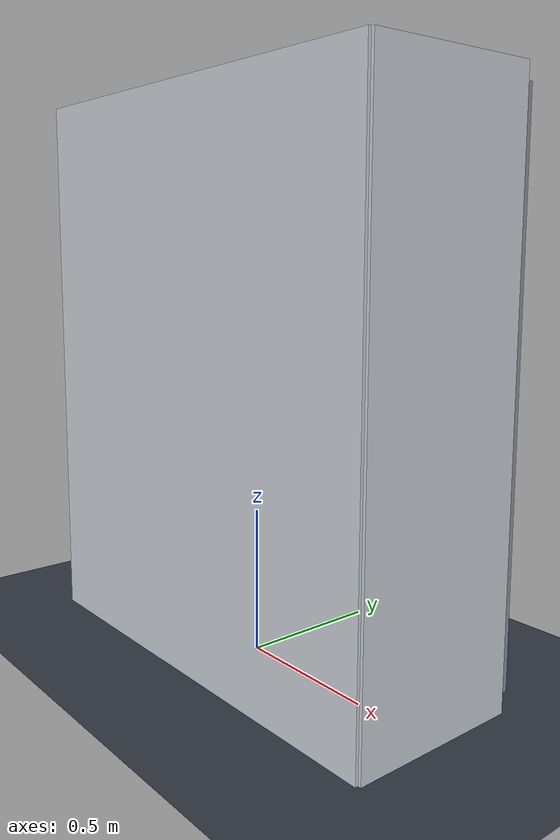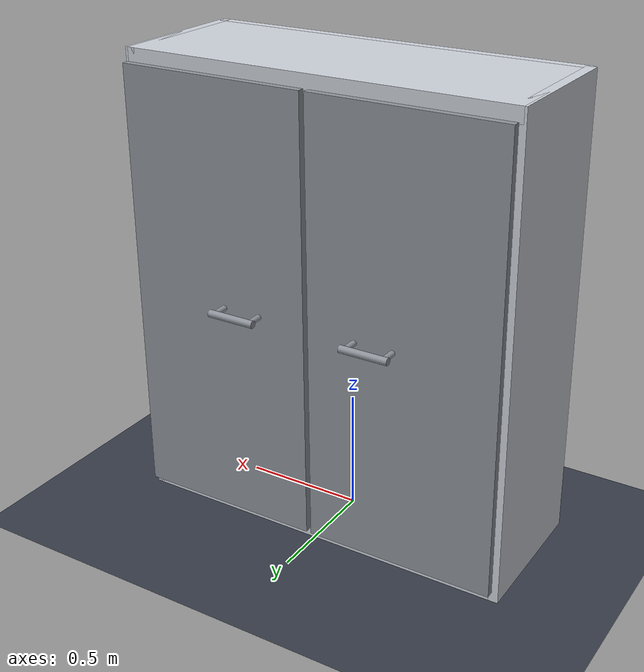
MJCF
<mujoco model="cabinet_scene">
  <option timestep="0.004" integrator="implicitfast"/>
  <compiler angle="radian"/>

  <visual>
    <global offwidth="1920" offheight="1080" elevation="-22" azimuth="135"/>
    <rgba haze="0.14 0.16 0.20 1"/>
    <map force="0.1" zfar="40"/>
    <quality shadowsize="4096"/>
  </visual>

  <statistic center="0 0 0.95" extent="2.5"/>

  <asset>
    <texture type="skybox" builtin="gradient" rgb1=".25 .3 .38" rgb2="0 0 0" width="32" height="512"/>
    <texture name="grid" type="2d" builtin="checker" width="512" height="512"
             rgb1=".18 .20 .24" rgb2=".24 .27 .32"/>
    <material name="grid" texture="grid" texrepeat="8 8" texuniform="true" reflectance=".15"/>
    <material name="shelf" rgba="0.80 0.82 0.85 1" reflectance="0.1"/>
    <material name="metal" rgba="0.55 0.57 0.60 1" reflectance="0.35"/>
  </asset>

  <default>
    <geom condim="3" friction="0.9 0.05 0.005" solref="0.008 1"/>
  </default>

  <worldbody>
    <geom name="floor" type="plane" size="0 0 0.05" material="grid" condim="3"/>
    <light name="top1" pos="0 0 3.5" dir="0 0 -1" diffuse="0.6 0.6 0.6"/>
    <light name="side" pos="0 -2.5 2.2" dir="0 1 -1" diffuse="0.4 0.4 0.4"/>
    <camera name="overview" pos="0 -2.8 1.3" xyaxes="1 0 0 0 0.42 0.91"/>
    <camera name="top" pos="0 0 3.5" xyaxes="1 0 0 0 1 0"/>

    <!-- ================= 柜子（双开门（铰链可开闭） + 三层挡板） ================= -->
    <!-- 柜宽 1.6(半0.8) 深 0.6(半0.3) 高 1.9；置于原点，正面朝 +y -->
    <body name="cabinet" pos="0 0 0" euler="0 0 0">
      <!-- 柜体外壳 -->
      <geom type="box" pos="0 0 0.03"   size="0.8 0.3 0.03" material="shelf"/>  <!-- 底板 -->
      <geom type="box" pos="0 0 1.87"   size="0.8 0.3 0.03" material="shelf"/>  <!-- 顶板 -->
      <geom type="box" pos="0 -0.29 0.95" size="0.8 0.02 0.95" material="shelf"/> <!-- 背板 -->
      <geom type="box" pos="0.79 0 0.95"  size="0.02 0.3 0.95" material="shelf"/> <!-- 右侧板 -->
      <geom type="box" pos="-0.79 0 0.95" size="0.02 0.3 0.95" material="shelf"/> <!-- 左侧板 -->
      <!-- 三层内部挡板 -->
      <geom type="box" pos="0 -0.02 0.50" size="0.78 0.28 0.02" material="shelf"/>
      <geom type="box" pos="0 -0.02 0.95" size="0.78 0.28 0.02" material="shelf"/>
      <geom type="box" pos="0 -0.02 1.40" size="0.78 0.28 0.02" material="shelf"/>
      <!-- 双开柜门（绕竖直 z 轴铰链可开闭，qpos=0 为关闭；可向 +y 前方打开至约 90°） -->
      <!-- 左门：铰链位于 x=-0.79（贴左侧板前缘），绕 +z 转动，正方向朝 +y 前方打开 -->
      <body name="cabinet_door_l" pos="-0.79 0.31 0.95">
        <joint name="cabinet_door_l_j" type="hinge" axis="0 0 1"
               range="0 1.7" damping="0.1" frictionloss="0.02"/>
        <geom name="cabinet_door_l_panel" type="box" pos="0.39 0.02 0"
              size="0.39 0.015 0.9" material="metal" mass="2"/>
        <!-- 把手：横向圆杆（长 20cm、直径 3cm），杆面距门面约 5cm 净空，便于整只手抓握 -->
        <geom name="cabinet_handle_l_bar" type="cylinder" pos="0.5 0.10 0"
              euler="0 1.5708 0" size="0.015 0.1" material="metal"/>
        <geom name="cabinet_handle_l_s1" type="cylinder" pos="0.42 0.0675 0"
              euler="1.5708 0 0" size="0.012 0.0325" material="metal"/>
        <geom name="cabinet_handle_l_s2" type="cylinder" pos="0.58 0.0675 0"
              euler="1.5708 0 0" size="0.012 0.0325" material="metal"/>
      </body>
      <!-- 右门：铰链位于 x=0.79（贴右侧板前缘），绕 -z 转动，朝 +y 前方打开 -->
      <body name="cabinet_door_r" pos="0.79 0.31 0.95">
        <joint name="cabinet_door_r_j" type="hinge" axis="0 0 1"
               range="-1.7 0" damping="0.1" frictionloss="0.02"/>
        <geom name="cabinet_door_r_panel" type="box" pos="-0.39 0.02 0"
              size="0.39 0.015 0.9" material="metal" mass="2"/>
        <geom name="cabinet_handle_r_bar" type="cylinder" pos="-0.5 0.10 0"
              euler="0 1.5708 0" size="0.015 0.1" material="metal"/>
        <geom name="cabinet_handle_r_s1" type="cylinder" pos="-0.42 0.0675 0"
              euler="1.5708 0 0" size="0.012 0.0325" material="metal"/>
        <geom name="cabinet_handle_r_s2" type="cylinder" pos="-0.58 0.0675 0"
              euler="1.5708 0 0" size="0.012 0.0325" material="metal"/>
      </body>
    </body>
  </worldbody>
</mujoco>
